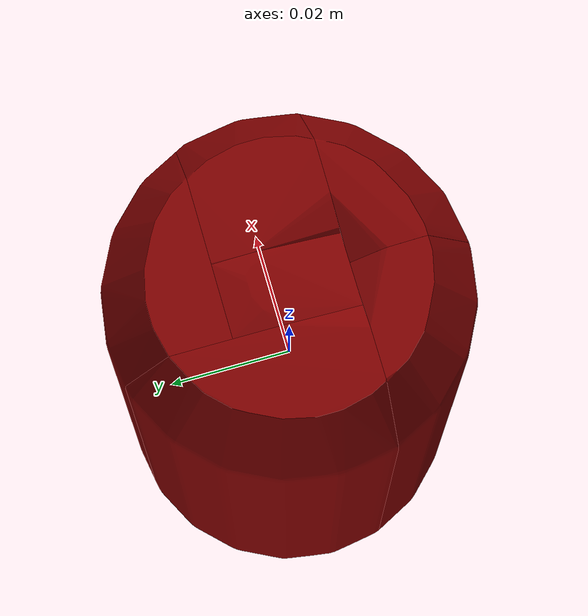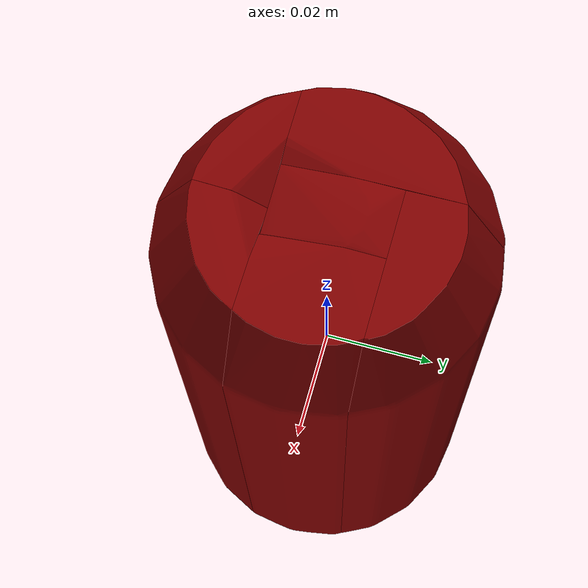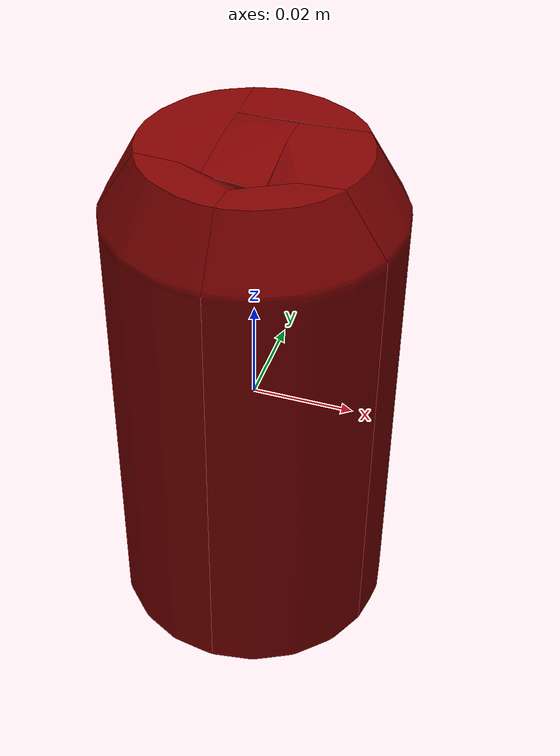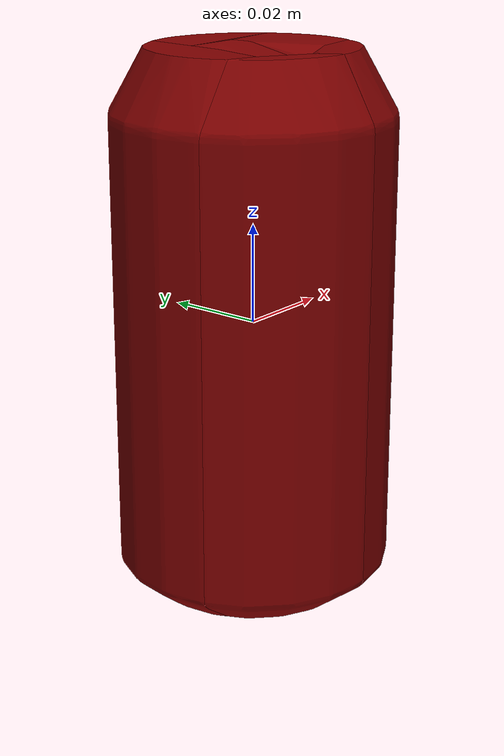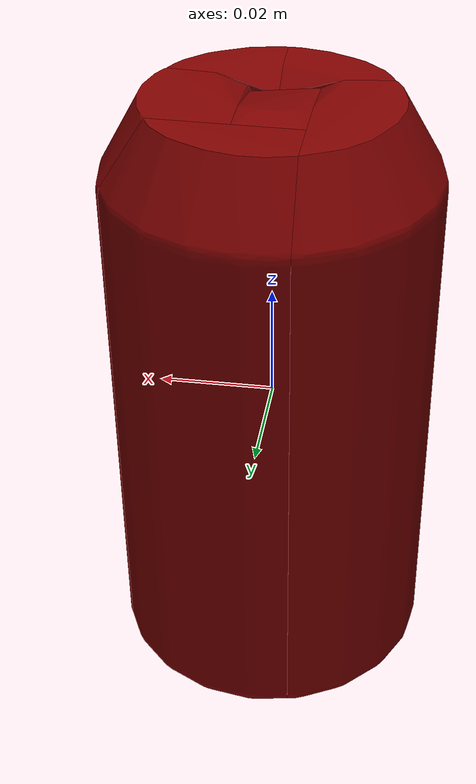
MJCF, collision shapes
<mujoco model="can_18">
  <asset>
    <mesh file="visual/model_normalized_0.obj" name="model_normalized_0_vis" scale="0.11 0.11 0.11" refquat="1.0 0.0 0.0 0.0"/>
    <mesh file="visual/model_normalized_1.obj" name="model_normalized_1_vis" scale="0.11 0.11 0.11" refquat="1.0 0.0 0.0 0.0"/>
    <texture type="2d" name="image1" file="visual/image1.png"/>
    <texture type="2d" name="image0" file="visual/image0.png"/>
    <material name="lambert3.008" texture="image1" specular="0.5" shininess="0.15999998099999999"/>
    <material name="latinha" texture="image0" specular="0.5" shininess="0.386037554"/>
    <mesh file="collision/collision_mesh_collision_0.obj" name="can_collision_mesh_0" scale="0.11 0.11 0.11" refquat="1.0 0.0 0.0 0.0"/>
    <mesh file="collision/collision_mesh_collision_1.obj" name="can_collision_mesh_1" scale="0.11 0.11 0.11" refquat="1.0 0.0 0.0 0.0"/>
    <mesh file="collision/collision_mesh_collision_2.obj" name="can_collision_mesh_2" scale="0.11 0.11 0.11" refquat="1.0 0.0 0.0 0.0"/>
    <mesh file="collision/collision_mesh_collision_3.obj" name="can_collision_mesh_3" scale="0.11 0.11 0.11" refquat="1.0 0.0 0.0 0.0"/>
    <mesh file="collision/collision_mesh_collision_4.obj" name="can_collision_mesh_4" scale="0.11 0.11 0.11" refquat="1.0 0.0 0.0 0.0"/>
    <mesh file="collision/collision_mesh_collision_5.obj" name="can_collision_mesh_5" scale="0.11 0.11 0.11" refquat="1.0 0.0 0.0 0.0"/>
  </asset>
  <default>
    <default class="region">
      <geom group="1" conaffinity="0" contype="0" rgba="0 1 0 0"/>
    </default>
    <default class="collision">
      <geom group="0" rgba="0.5 0 0 0.5" density="1000.0"/>
    </default>
  </default>
  <worldbody>
    <body>
      <body name="object">
        <geom solimp="0.998 0.998 0.001" solref="0.001 1" density="100" friction="0.95 0.3 0.1" type="mesh" mesh="model_normalized_0_vis" conaffinity="0" contype="0" group="1" material="lambert3.008"/>
        <geom solimp="0.998 0.998 0.001" solref="0.001 1" density="100" friction="0.95 0.3 0.1" type="mesh" mesh="model_normalized_1_vis" conaffinity="0" contype="0" group="1" material="latinha"/>
        <geom class="region" name="reg_bbox" type="box" pos="8.194999999960873e-08 -8.194999999960873e-08 -1.932864999999617e-05" size="0.02807730695 0.028077333349999997 0.055523471850000006"/>
        <geom mesh="can_collision_mesh_0" type="mesh" class="collision"/>
        <geom mesh="can_collision_mesh_1" type="mesh" class="collision"/>
        <geom mesh="can_collision_mesh_2" type="mesh" class="collision"/>
        <geom mesh="can_collision_mesh_3" type="mesh" class="collision"/>
        <geom mesh="can_collision_mesh_4" type="mesh" class="collision"/>
        <geom mesh="can_collision_mesh_5" type="mesh" class="collision"/>
      </body>
    </body>
  </worldbody>
</mujoco>
